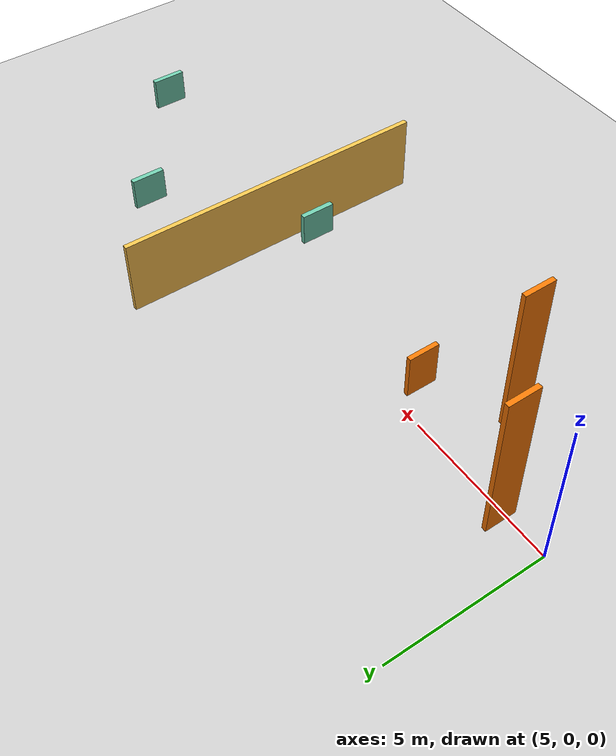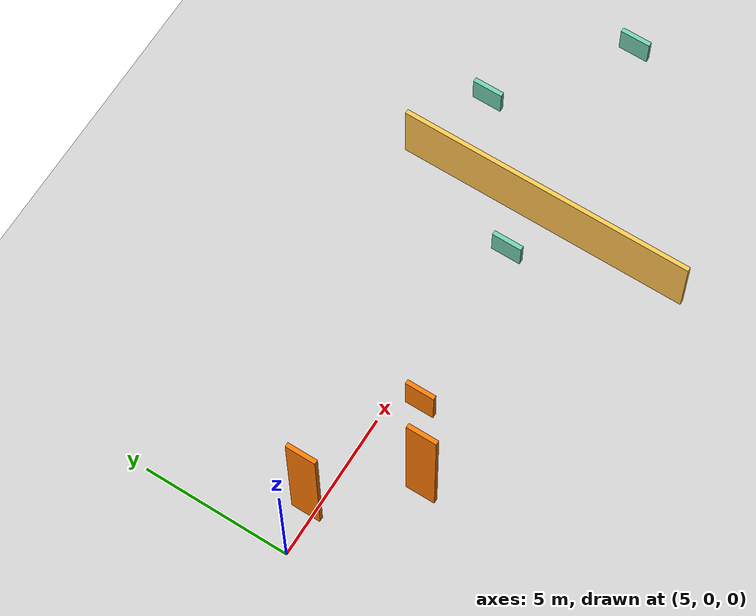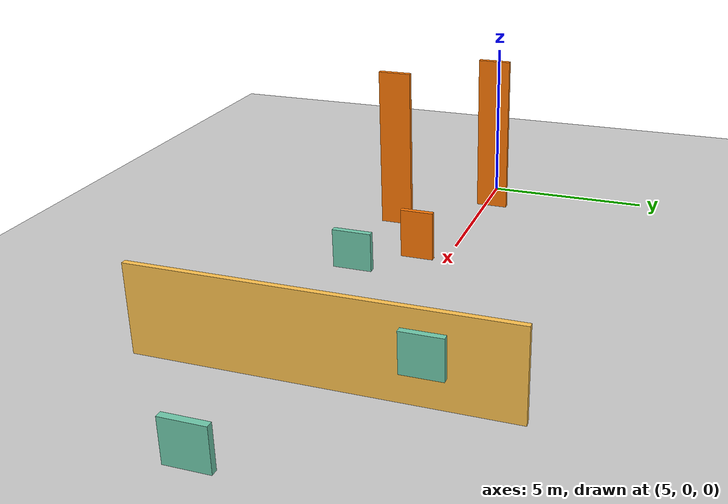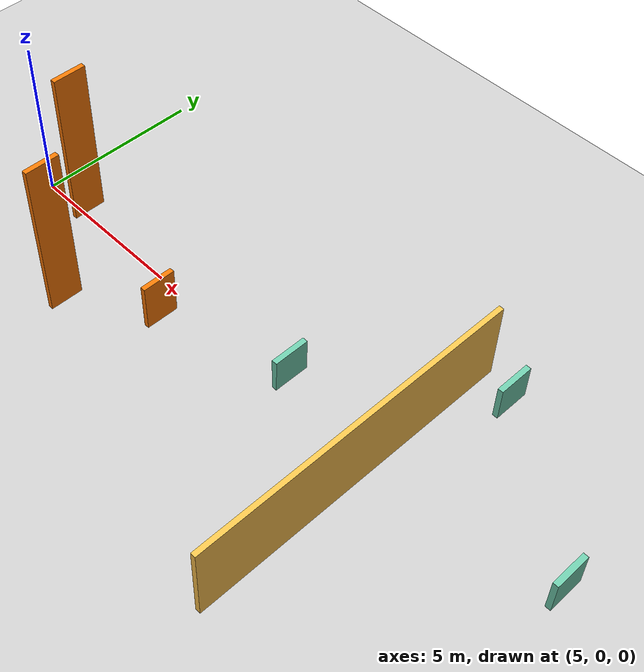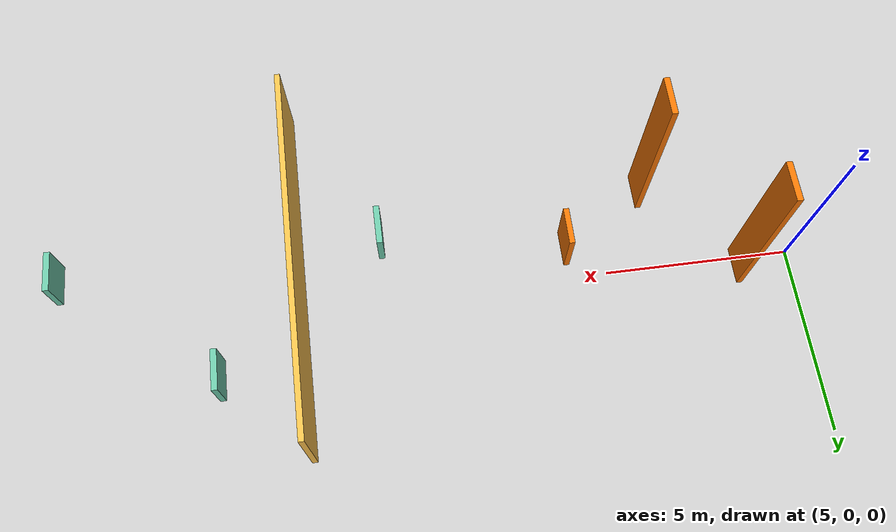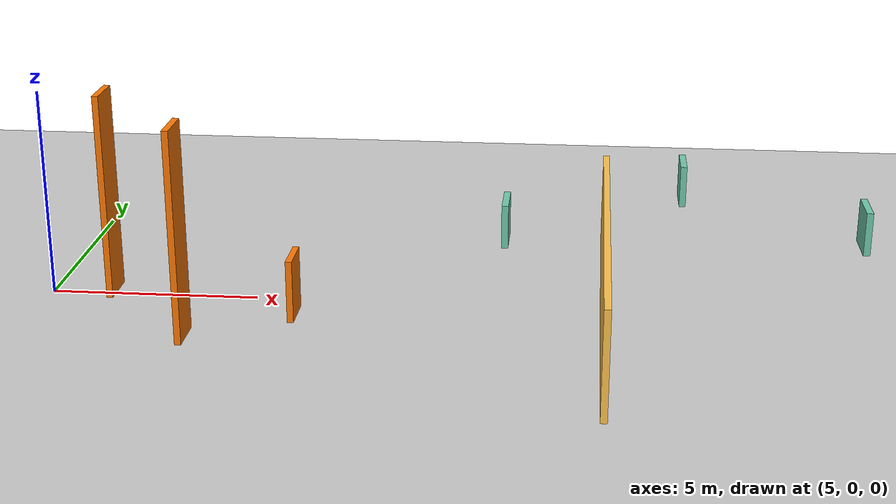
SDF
<sdf version="1.6">
 <world name="default">
  <light name="sun" type="directional">
   <pose>0 0 10 0 -0 0</pose>
   <diffuse>0.8 0.8 0.8 1</diffuse>
   <specular>0.2 0.2 0.2 1</specular>
   <attenuation>
    <range>1000</range>
    <constant>0.9</constant>
    <linear>0.01</linear>
    <quadratic>0.001</quadratic>
   </attenuation>
   <direction>-0.5 0.1 -0.9</direction>
  </light>
  <model name="ground_plane">
   <static>1</static>
   <link name="link">
    <collision name="collision">
     <geometry><plane><normal>0 0 1</normal><size>100 100</size></plane></geometry>
     <surface>
      <contact><collide_bitmask>65535</collide_bitmask></contact>
      <friction><ode><mu>100</mu><mu2>50</mu2></ode></friction>
     </surface>
    </collision>
    <visual name="visual">
     <cast_shadows>0</cast_shadows>
     <geometry><plane><normal>0 0 1</normal><size>100 100</size></plane></geometry>
     <material>
      <script><uri>file://media/materials/scripts/gazebo.material</uri><name>Gazebo/Grey</name></script>
     </material>
    </visual>
   </link>
  </model>
  <gravity>0 0 -9.8</gravity>
  <magnetic_field>6e-06 2.3e-05 -4.2e-05</magnetic_field>
  <atmosphere type="adiabatic"/>
  <physics name="default_physics" default="0" type="ode">
   <max_step_size>0.001</max_step_size>
   <real_time_factor>1</real_time_factor>
   <real_time_update_rate>1000</real_time_update_rate>
  </physics>
  <scene><ambient>0.4 0.4 0.4 1</ambient><background>0.7 0.7 0.7 1</background><shadows>1</shadows></scene>
  <audio><device>default</device></audio>
  <spherical_coordinates>
   <surface_model>EARTH_WGS84</surface_model>
   <latitude_deg>0</latitude_deg>
   <longitude_deg>0</longitude_deg>
   <elevation>0</elevation>
   <heading_deg>0</heading_deg>
  </spherical_coordinates>
  <model name="drone_obstacle_avoidance">
   <pose>12.3611 -1.07313 0 0 -0 0</pose>
   <link name="Wall_12">
    <collision name="Wall_12_Collision">
     <geometry><box><size>1 0.15 5</size></box></geometry>
     <pose>0 0 2.5 0 -0 0</pose>
    </collision>
    <visual name="Wall_12_Visual">
     <pose>0 0 2.5 0 -0 0</pose>
     <geometry><box><size>1 0.15 5</size></box></geometry>
     <material>
      <script><uri>file://media/materials/scripts/gazebo.material</uri><name>Gazebo/Grey</name></script>
      <ambient>0.996078 0.47451 0.0196078 1</ambient>
     </material>
     <meta><layer>0</layer></meta>
    </visual>
    <pose>-5.90518 1.28502 0 0 -0 -1.5708</pose>
   </link>
   <link name="Wall_14">
    <collision name="Wall_14_Collision">
     <geometry><box><size>1 0.15 1.5</size></box></geometry>
     <pose>0 0 0.75 0 -0 0</pose>
    </collision>
    <visual name="Wall_14_Visual">
     <pose>0 0 0.75 0 -0 0</pose>
     <geometry><box><size>1 0.15 1.5</size></box></geometry>
     <material>
      <script><uri>file://media/materials/scripts/gazebo.material</uri><name>Gazebo/Grey</name></script>
      <ambient>0.996078 0.47451 0.0196078 1</ambient>
     </material>
     <meta><layer>0</layer></meta>
    </visual>
    <pose>-1.31622 0.187687 0 0 -0 -1.5708</pose>
   </link>
   <link name="Wall_16">
    <collision name="Wall_16_Collision">
     <geometry><box><size>10 0.15 2.5</size></box></geometry>
     <pose>0 0 1.25 0 -0 0</pose>
    </collision>
    <visual name="Wall_16_Visual">
     <pose>0 0 1.25 0 -0 0</pose>
     <geometry><box><size>10 0.15 2.5</size></box></geometry>
     <material>
      <script><uri>file://media/materials/scripts/gazebo.material</uri><name>Gazebo/Grey</name></script>
      <ambient>1 0.764706 0.305882 1</ambient>
     </material>
     <meta><layer>0</layer></meta>
    </visual>
    <pose>5.90518 0.230528 0 0 -0 -1.5708</pose>
   </link>
   <link name="Wall_9">
    <collision name="Wall_9_Collision">
     <geometry><box><size>1 0.15 5</size></box></geometry>
     <pose>0 0 2.5 0 -0 0</pose>
    </collision>
    <visual name="Wall_9_Visual">
     <pose>0 0 2.5 0 -0 0</pose>
     <geometry><box><size>1 0.15 5</size></box></geometry>
     <material>
      <script><uri>file://media/materials/scripts/gazebo.material</uri><name>Gazebo/Grey</name></script>
      <ambient>0.996078 0.47451 0.0196078 1</ambient>
     </material>
     <meta><layer>0</layer></meta>
    </visual>
    <pose>-3.60461 -1.28502 0 0 -0 1.5708</pose>
   </link>
   <static>1</static>
  </model>
  <light name="user_point_light_0" type="point">
   <pose>0.031054 0.010351 1 0 -0 0</pose>
   <diffuse>0.5 0.5 0.5 1</diffuse>
   <specular>0.1 0.1 0.1 1</specular>
   <attenuation>
    <range>20</range>
    <constant>0.5</constant>
    <linear>0.01</linear>
    <quadratic>0.001</quadratic>
   </attenuation>
   <cast_shadows>0</cast_shadows>
   <direction>0 0 -1</direction>
  </light>
  <model name="obstacle_full">
   <pose>20 0.743966 2 0 -0 0</pose>
   <link name="Wall_2">
    <visual name="Wall_2_Visual">
     <pose>0 0 0.5 0 -0 0</pose>
     <geometry><box><size>1 0.15 1</size></box></geometry>
     <material>
      <script><uri>file://media/materials/scripts/gazebo.material</uri><name>Gazebo/Grey</name></script>
      <ambient>0.435294 0.796078 0.67451 1</ambient>
     </material>
     <meta><layer>0</layer></meta>
    </visual>
    <pose>-4.01497 -1.59578 0 0 -0 -1.5708</pose>
   </link>
   <link name="Wall_6">
    <visual name="Wall_6_Visual">
     <pose>0 0 0.5 0 -0 0</pose>
     <geometry><box><size>1 0.15 1</size></box></geometry>
     <material>
      <script><uri>file://media/materials/scripts/gazebo.material</uri><name>Gazebo/Grey</name></script>
      <ambient>0.435294 0.796078 0.67451 1</ambient>
     </material>
     <meta><layer>0</layer></meta>
    </visual>
    <pose>0.090755 1.59578 0 0 -0 -1.5708</pose>
   </link>
   <link name="Wall_8">
    <visual name="Wall_8_Visual">
     <pose>0 0 0.5 0 -0 0</pose>
     <geometry><box><size>1 0.15 1</size></box></geometry>
     <material>
      <script><uri>file://media/materials/scripts/gazebo.material</uri><name>Gazebo/Grey</name></script>
      <ambient>0.435294 0.796078 0.67451 1</ambient>
     </material>
     <meta><layer>0</layer></meta>
    </visual>
    <pose>4.01497 -1.35497 0 0 -0 -1.5708</pose>
   </link>
   <static>1</static>
  </model>
 </world>
</sdf>
